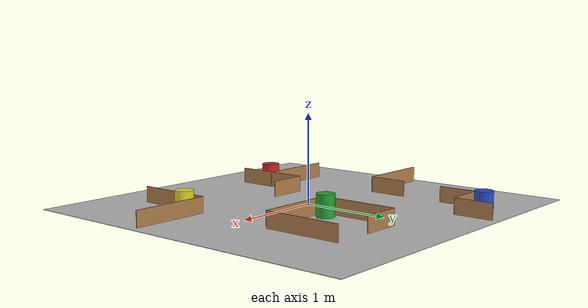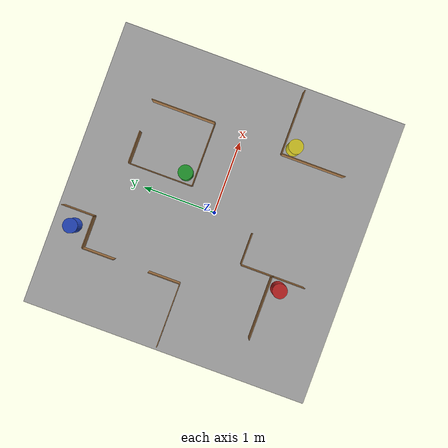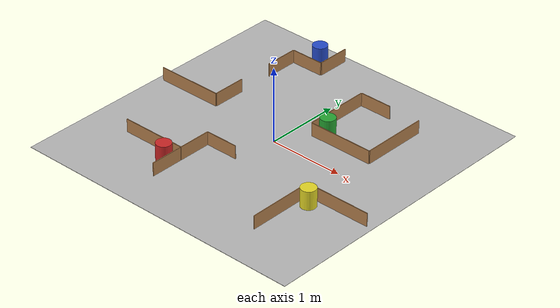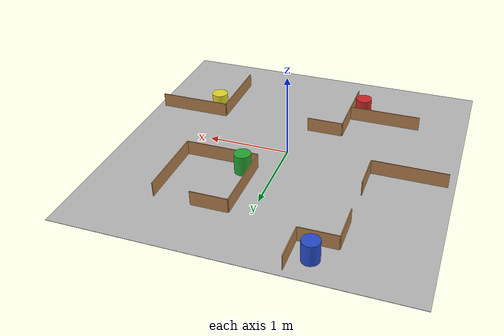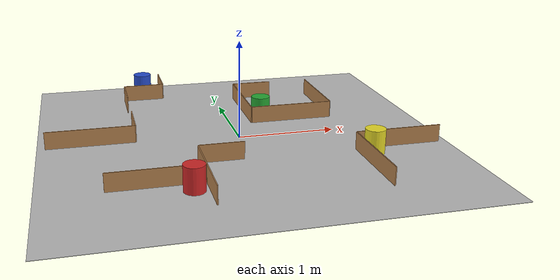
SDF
<?xml version="1.0"?>
<sdf version="1.4">
<model name="task4_explore">
  <static>true</static>
    <link name="floor">
      <collision name="collision">
        <geometry>
          <plane>
            <normal>0 0 1</normal>
            <size>4.0 4.0</size>
          </plane>
        </geometry>
        <surface>
          <friction>
            <ode>
              <mu>100</mu>
              <mu2>50</mu2>
            </ode>
          </friction>
        </surface>
      </collision>
      <visual name="visual">
        <cast_shadows>false</cast_shadows>
        <geometry>
          <plane>
            <normal>0 0 1</normal>
            <size>4.0 4.0</size>
          </plane>
        </geometry>
        <material>
          <script>
            <uri>model://task4_explore/materials/scripts</uri>
            <uri>model://task4_explore/materials/textures</uri>
            <name>Task4ExploreFloor/Image</name>
          </script>
        </material>
      </visual>
    </link>
    <link name='BLUE'>
      <pose frame=''>-0.8 1.7 0.125 0 0 0</pose>
      <collision name='coll'>
        <geometry>
          <cylinder>
            <radius>0.1</radius>
            <length>0.25</length>
          </cylinder>
        </geometry>
        <max_contacts>10</max_contacts>
        <surface>
          <bounce/>
          <friction>
            <ode/>
          </friction>
          <contact>
            <ode/>
          </contact>
        </surface>
      </collision>
      <visual name='vis'>
        <geometry>
          <cylinder>
            <radius>0.1</radius>
            <length>0.25</length>
          </cylinder>
        </geometry>
        <material>
          <script>
            <uri>file://media/materials/scripts/gazebo.material</uri>
            <name>Gazebo/Blue</name>
          </script>
        </material>
      </visual>
    </link>
    <link name='RED'>
      <pose frame=''>-0.66186 -1.14964 0.125 0 0 0</pose>
      <collision name='coll'>
        <geometry>
          <cylinder>
            <radius>0.1</radius>
            <length>0.25</length>
          </cylinder>
        </geometry>
        <max_contacts>10</max_contacts>
        <surface>
          <bounce/>
          <friction>
            <ode/>
          </friction>
          <contact>
            <ode/>
          </contact>
        </surface>
      </collision>
      <visual name='vis'>
        <geometry>
          <cylinder>
            <radius>0.1</radius>
            <length>0.25</length>
          </cylinder>
        </geometry>
        <material>
          <script>
            <uri>file://media/materials/scripts/gazebo.material</uri>
            <name>Gazebo/Red</name>
          </script>
        </material>
      </visual>
    </link>
    <link name='GREEN'>
      <pose frame=''>0.36417 0.53209 0.125 0 0 0</pose>
      <collision name='coll'>
        <geometry>
          <cylinder>
            <radius>0.1</radius>
            <length>0.25</length>
          </cylinder>
        </geometry>
        <max_contacts>10</max_contacts>
        <surface>
          <bounce/>
          <friction>
            <ode/>
          </friction>
          <contact>
            <ode/>
          </contact>
        </surface>
      </collision>
      <visual name='vis'>
        <geometry>
          <cylinder>
            <radius>0.1</radius>
            <length>0.25</length>
          </cylinder>
        </geometry>
        <material>
          <script>
            <uri>file://media/materials/scripts/gazebo.material</uri>
            <name>Gazebo/Green</name>
          </script>
        </material>
      </visual>
    </link>
    <link name='YELLOW'>
      <pose frame=''>1.17 -0.70109 0.125 0 0 0</pose>
      <collision name='coll'>
        <geometry>
          <cylinder>
            <radius>0.1</radius>
            <length>0.25</length>
          </cylinder>
        </geometry>
        <max_contacts>10</max_contacts>
        <surface>
          <bounce/>
          <friction>
            <ode/>
          </friction>
          <contact>
            <ode/>
          </contact>
        </surface>
      </collision>
      <visual name='vis'>
        <geometry>
          <cylinder>
            <radius>0.1</radius>
            <length>0.25</length>
          </cylinder>
        </geometry>
        <material>
          <script>
            <uri>file://media/materials/scripts/gazebo.material</uri>
            <name>Gazebo/Yellow</name>
          </script>
        </material>
      </visual>
    </link>
    <link name='room_1'>
      <pose frame=''>1.475 -1.00609 0.09 0 0 0</pose>
      <collision name='long_1coll'>
        <geometry>
          <box>
            <size>0.88 0.01 0.18</size>
          </box>
        </geometry>
        <pose frame=''>0.005 0.44 0 0 0 0</pose>
      </collision>
      <visual name='long_1vis'>
        <pose frame=''>0.005 0.44 0 0 0 0</pose>
        <geometry>
          <box>
            <size>0.88 0.01 0.18</size>
          </box>
        </geometry>
        <material>
          <script>
            <uri>file://media/materials/scripts/gazebo.material</uri>
            <name>Gazebo/Wood</name>
          </script>
        </material>
      </visual>
      <collision name='long_2coll'>
        <geometry>
          <box>
            <size>0.01 0.88 0.18</size>
          </box>
        </geometry>
        <pose frame=''>-0.44 -0.005 0 0 0 0</pose>
      </collision>
      <visual name='long_2vis'>
        <pose frame=''>-0.44 -0.005 0 0 0 0</pose>
        <geometry>
          <box>
            <size>0.01 0.88 0.18</size>
          </box>
        </geometry>
        <material>
          <script>
            <uri>file://media/materials/scripts/gazebo.material</uri>
            <name>Gazebo/Wood</name>
          </script>
        </material>
      </visual>
    </link>
    <link name='room_2'>
      <pose frame=''>0.67417 0.84209 0.09 0 0 0</pose>
      <collision name='long_1coll'>
        <geometry>
          <box>
            <size>0.01 0.88 0.18</size>
          </box>
        </geometry>
        <pose frame=''>-0.445 0 0 0 0 0</pose>
      </collision>
      <visual name='long_1vis'>
        <pose frame=''>-0.445 0 0 0 0 0</pose>
        <geometry>
          <box>
            <size>0.01 0.88 0.18</size>
          </box>
        </geometry>
        <material>
          <script>
            <uri>file://media/materials/scripts/gazebo.material</uri>
            <name>Gazebo/Wood</name>
          </script>
        </material>
      </visual>
      <collision name='short_1coll'>
        <geometry>
          <box>
            <size>0.44 0.01 0.18</size>
          </box>
        </geometry>
        <pose frame=''>-0.22 0.445 0 0 0 0</pose>
      </collision>
      <visual name='short_1vis'>
        <pose frame=''>-0.22 0.445 0 0 0 0</pose>
        <geometry>
          <box>
            <size>0.44 0.01 0.18</size>
          </box>
        </geometry>
        <material>
          <script>
            <uri>file://media/materials/scripts/gazebo.material</uri>
            <name>Gazebo/Wood</name>
          </script>
        </material>
      </visual>
      <collision name='long_2coll'>
        <geometry>
          <box>
            <size>0.88 0.01 0.18</size>
          </box>
        </geometry>
        <pose frame=''>0 -0.445 0 0 0 0</pose>
      </collision>
      <visual name='long_2vis'>
        <pose frame=''>0 -0.445 0 0 0 0</pose>
        <geometry>
          <box>
            <size>0.88 0.01 0.18</size>
          </box>
        </geometry>
        <material>
          <script>
            <uri>file://media/materials/scripts/gazebo.material</uri>
            <name>Gazebo/Wood</name>
          </script>
        </material>
      </visual>
      <collision name='long_3coll'>
        <geometry>
          <box>
            <size>0.01 0.88 0.18</size>
          </box>
        </geometry>
        <pose frame=''>0.445 0 0 0 0 0</pose>
      </collision>
      <visual name='long_3vis'>
        <pose frame=''>0.445 0 0 0 0 0</pose>
        <geometry>
          <box>
            <size>0.01 0.88 0.18</size>
          </box>
        </geometry>
        <material>
          <script>
            <uri>file://media/materials/scripts/gazebo.material</uri>
            <name>Gazebo/Wood</name>
          </script>
        </material>
      </visual>
    </link>
    <link name='room_3'>
      <pose frame=''>-0.74686 -1.00964 0.09 0 0 0</pose>
      <collision name='long_1coll'>
        <geometry>
          <box>
            <size>0.88 0.01 0.18</size>
          </box>
        </geometry>
        <pose frame=''>-0.225 0.005 0 0 0 0</pose>
      </collision>
      <visual name='long_1vis'>
        <pose frame=''>-0.225 0.005 0 0 0 0</pose>
        <geometry>
          <box>
            <size>0.88 0.01 0.18</size>
          </box>
        </geometry>
        <material>
          <script>
            <uri>file://media/materials/scripts/gazebo.material</uri>
            <name>Gazebo/Wood</name>
          </script>
        </material>
      </visual>
      <collision name='short_1coll'>
        <geometry>
          <box>
            <size>0.01 0.44 0.18</size>
          </box>
        </geometry>
        <pose frame=''>0.22 -0.23 0 0 0 0</pose>
      </collision>
      <visual name='short_1vis'>
        <pose frame=''>0.22 -0.23 0 0 0 0</pose>
        <geometry>
          <box>
            <size>0.01 0.44 0.18</size>
          </box>
        </geometry>
        <material>
          <script>
            <uri>file://media/materials/scripts/gazebo.material</uri>
            <name>Gazebo/Wood</name>
          </script>
        </material>
      </visual>
      <collision name='short_2coll'>
        <geometry>
          <box>
            <size>0.01 0.44 0.18</size>
          </box>
        </geometry>
        <pose frame=''>0.22 0.22 0 0 0 0</pose>
      </collision>
      <visual name='short_2vis'>
        <pose frame=''>0.22 0.22 0 0 0 0</pose>
        <geometry>
          <box>
            <size>0.01 0.44 0.18</size>
          </box>
        </geometry>
        <material>
          <script>
            <uri>file://media/materials/scripts/gazebo.material</uri>
            <name>Gazebo/Wood</name>
          </script>
        </material>
      </visual>
      <collision name='short_3coll'>
        <geometry>
          <box>
            <size>0.44 0.01 0.18</size>
          </box>
        </geometry>
        <pose frame=''>0.445 0.445 0 0 0 0</pose>
      </collision>
      <visual name='short_3vis'>
        <pose frame=''>0.445 0.445 0 0 0 0</pose>
        <geometry>
          <box>
            <size>0.44 0.01 0.18</size>
          </box>
        </geometry>
        <material>
          <script>
            <uri>file://media/materials/scripts/gazebo.material</uri>
            <name>Gazebo/Wood</name>
          </script>
        </material>
      </visual>
    </link>
    <link name='room_4'>
      <pose frame=''>-1.25 1.01 0.09 0 0 0</pose>
      <collision name='long_1coll'>
        <geometry>
          <box>
            <size>0.88 0.01 0.18</size>
          </box>
        </geometry>
        <pose frame=''>-0.23 -0.905 0 0 0 0</pose>
      </collision>
      <visual name='long_1vis'>
        <pose frame=''>-0.23 -0.905 0 0 0 0</pose>
        <geometry>
          <box>
            <size>0.88 0.01 0.18</size>
          </box>
        </geometry>
        <material>
          <script>
            <uri>file://media/materials/scripts/gazebo.material</uri>
            <name>Gazebo/Wood</name>
          </script>
        </material>
      </visual>
      <collision name='short_1coll'>
        <geometry>
          <box>
            <size>0.01 0.44 0.18</size>
          </box>
        </geometry>
        <pose frame=''>0.215 -0.68 0 0 0 0</pose>
      </collision>
      <visual name='short_1vis'>
        <pose frame=''>0.215 -0.68 0 0 0 0</pose>
        <geometry>
          <box>
            <size>0.01 0.44 0.18</size>
          </box>
        </geometry>
        <material>
          <script>
            <uri>file://media/materials/scripts/gazebo.material</uri>
            <name>Gazebo/Wood</name>
          </script>
        </material>
      </visual>
      <collision name='short_2coll'>
        <geometry>
          <box>
            <size>0.01 0.44 0.18</size>
          </box>
        </geometry>
        <pose frame=''>0.215 0.24 0 0 0 0</pose>
      </collision>
      <visual name='short_2vis'>
        <pose frame=''>0.215 0.24 0 0 0 0</pose>
        <geometry>
          <box>
            <size>0.01 0.44 0.18</size>
          </box>
        </geometry>
        <material>
          <script>
            <uri>file://media/materials/scripts/gazebo.material</uri>
            <name>Gazebo/Wood</name>
          </script>
        </material>
      </visual>
      <collision name='short_3coll'>
        <geometry>
          <box>
            <size>0.44 0.01 0.18</size>
          </box>
        </geometry>
        <pose frame=''>0.44 0.465 0 0 0 0</pose>
      </collision>
      <visual name='short_3vis'>
        <pose frame=''>0.44 0.465 0 0 0 0</pose>
        <geometry>
          <box>
            <size>0.44 0.01 0.18</size>
          </box>
        </geometry>
        <material>
          <script>
            <uri>file://media/materials/scripts/gazebo.material</uri>
            <name>Gazebo/Wood</name>
          </script>
        </material>
      </visual>
      <collision name='short_4coll'>
        <geometry>
          <box>
            <size>0.01 0.44 0.18</size>
          </box>
        </geometry>
        <pose frame=''>0.665 0.69 0 0 0 0</pose>
      </collision>
      <visual name='short_4vis'>
        <pose frame=''>0.665 0.69 0 0 0 0</pose>
        <geometry>
          <box>
            <size>0.01 0.44 0.18</size>
          </box>
        </geometry>
        <material>
          <script>
            <uri>file://media/materials/scripts/gazebo.material</uri>
            <name>Gazebo/Wood</name>
          </script>
        </material>
      </visual>
    </link>
  </model>
</sdf>
